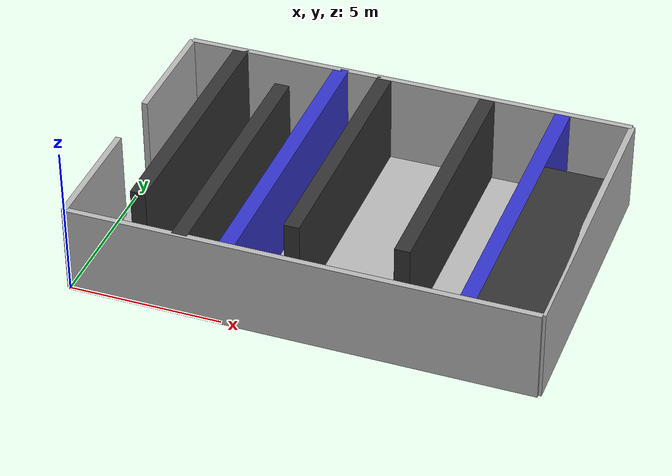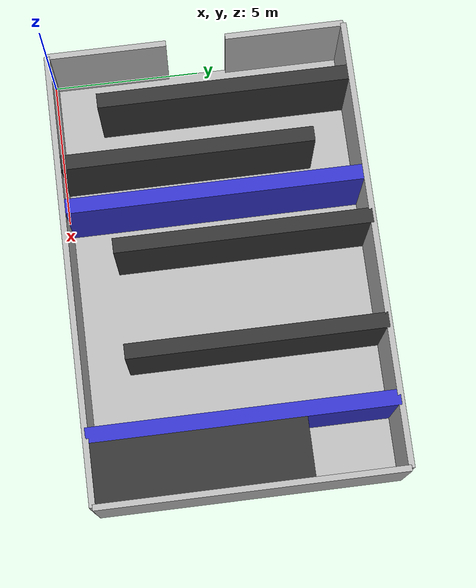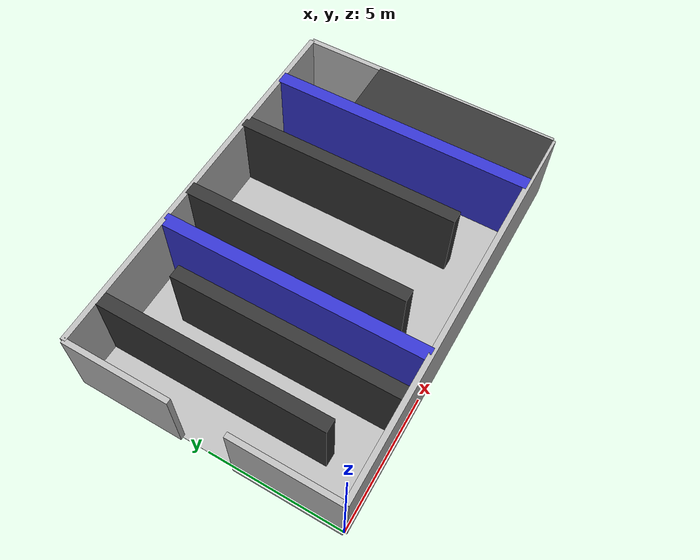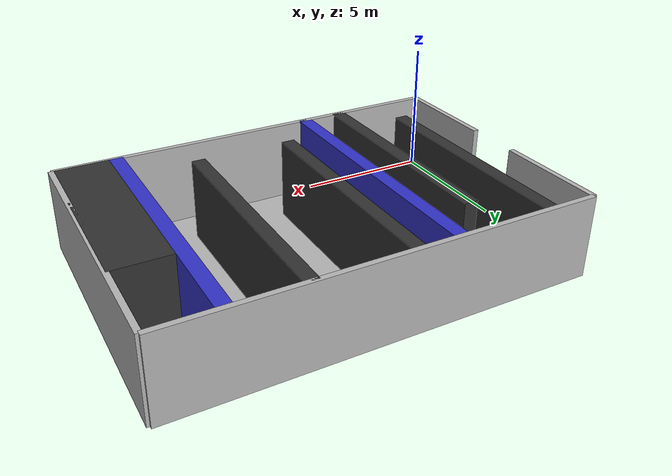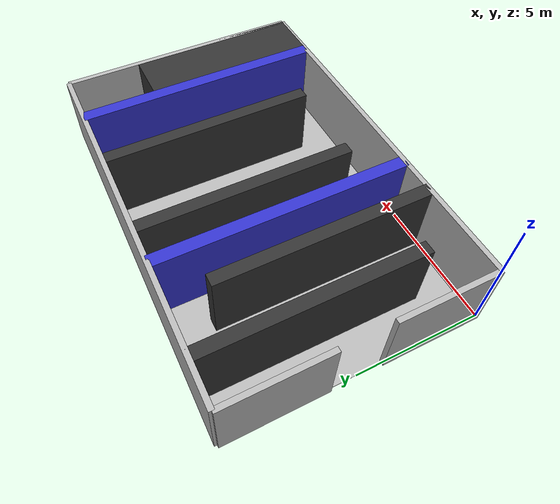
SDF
<?xml version="1.0" ?>
<sdf version="1.7">
  <world name="slalom_map_world">

    <include><uri>model://sun</uri></include>

    <model name="floor">
      <static>true</static>
      <link name="link">
        <pose>7.5 5 0 0 0 0</pose>
        <collision name="collision"> <geometry><box><size>15 10 0.01</size></box></geometry>
        </collision>
        <visual name="visual">
          <geometry><box><size>15 10 0.01</size></box></geometry>
        </visual>
      </link>
    </model>

    <model name="north_wall">
      <static>true</static>
      <link name="link">
        <pose>7.5 10 1.5 0 0 0</pose>
        <collision name="collision"><geometry><box><size>15 0.2 3.0</size></box></geometry></collision>
        <visual name="visual"><geometry><box><size>15 0.2 3.0</size></box></geometry></visual>
      </link>
    </model>

    <model name="south_wall">
      <static>true</static>
      <link name="link">
        <pose>7.5 0 1.5 0 0 0</pose>
        <collision name="collision"><geometry><box><size>15 0.2 3.0</size></box></geometry></collision>
        <visual name="visual"><geometry><box><size>15 0.2 3.0</size></box></geometry></visual>
      </link>
    </model>

    <model name="east_wall">
      <static>true</static>
      <link name="link">
        <pose>15 5 1.5 0 0 0</pose>
        <collision name="collision"><geometry><box><size>0.2 10 3.0</size></box></geometry></collision>
        <visual name="visual"><geometry><box><size>0.2 10 3.0</size></box></geometry></visual>
      </link>
    </model>

    <model name="west_wall_south">
      <static>true</static>
      <link name="link">
        <pose>0 2 1.5 0 0 0</pose>
        <collision name="collision"><geometry><box><size>0.2 4 3.0</size></box></geometry></collision>
        <visual name="visual"><geometry><box><size>0.2 4 3.0</size></box></geometry></visual>
      </link>
    </model>

    <model name="west_wall_north">
      <static>true</static>
      <link name="link">
        <pose>0 8 1.5 0 0 0</pose>
        <collision name="collision"><geometry><box><size>0.2 4 3.0</size></box></geometry></collision>
        <visual name="visual"><geometry><box><size>0.2 4 3.0</size></box></geometry></visual>
      </link>
    </model>

    <model name="full_wall_1">
      <static>true</static>
      <link name="link">
        <pose>5.25 5 1.5 0 0 0</pose>
        <collision name="collision">
          <geometry>
            <box>
              <size>0.5 10 3.0</size>
            </box>
          </geometry>
        </collision>
        <visual name="visual">
          <geometry>
            <box>
              <size>0.5 10 3.0</size>
            </box>
          </geometry>
          <material>
            <ambient>0.2 0.2 0.8 1</ambient>
          </material>
        </visual>
      </link>
    </model>

    <model name="full_wall_2">
      <static>true</static>
      <link name="link">
        <pose>12.75 5 1.5 0 0 0</pose>
        <collision name="collision">
          <geometry>
            <box>
              <size>0.5 10 3.0</size>
            </box>
          </geometry>
        </collision>
        <visual name="visual">
          <geometry>
            <box>
              <size>0.5 10 3.0</size>
            </box>
          </geometry>
          <material>
            <ambient>0.2 0.2 0.8 1</ambient>
          </material>
        </visual>
      </link>
    </model>

    <model name="partial_central_wall_1">
      <static>true</static>
      <link name="link">
        <pose>1.75 5.75 1.5 0 0 0</pose>
        <collision name="collision">
          <geometry><box><size>0.5 8.5 3.0</size></box></geometry>
        </collision>
        <visual name="visual">
          <geometry><box><size>0.5 8.5 3.0</size></box></geometry>
          <material><ambient>0.2 0.2 0.2 1</ambient></material>
        </visual>
      </link>
    </model>

    <model name="partial_central_wall_2">
      <static>true</static>
      <link name="link">
        <pose>3.75 4.25 1.5 0 0 0</pose>
        <collision name="collision">
          <geometry><box><size>0.5 8.5 3.0</size></box></geometry>
        </collision>
        <visual name="visual">
          <geometry><box><size>0.5 8.5 3.0</size></box></geometry>
          <material><ambient>0.2 0.2 0.2 1</ambient></material>
        </visual>
      </link>
    </model>

    <model name="partial_central_wall_3">
      <static>true</static>
      <link name="link">
        <pose>6.75 5.75 1.5 0 0 0</pose>
        <collision name="collision">
          <geometry><box><size>0.5 8.5 3.0</size></box></geometry>
        </collision>
        <visual name="visual">
          <geometry><box><size>0.5 8.5 3.0</size></box></geometry>
          <material><ambient>0.2 0.2 0.2 1</ambient></material>
        </visual>
      </link>
    </model>

    <model name="partial_central_wall_4">
      <static>true</static>
      <link name="link">
        <pose>10.25 5.75 1.5 0 0 0</pose>
        <collision name="collision">
          <geometry><box><size>0.5 8.5 3.0</size></box></geometry>
        </collision>
        <visual name="visual">
          <geometry><box><size>0.5 8.5 3.0</size></box></geometry>
          <material><ambient>0.2 0.2 0.2 1</ambient></material>
        </visual>
      </link>
    </model>

    <model name="final_block">
      <static>true</static>
      <link name="link">
        <pose>14.0 3.5 1.5 0 0 0</pose>
        <collision name="collision">
          <geometry><box><size>2.0 7.0 3.0</size></box></geometry>
        </collision>
        <visual name="visual">
          <geometry><box><size>2.0 7.0 3.0</size></box></geometry>
          <material><ambient>0.2 0.2 0.2 1</ambient></material>
        </visual>
      </link>
    </model>

    </world>
</sdf>
